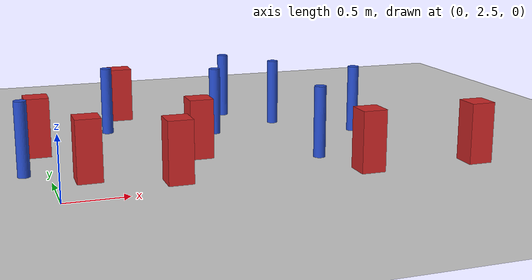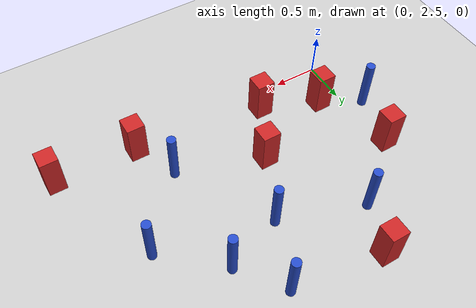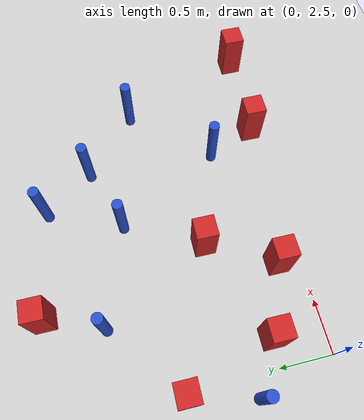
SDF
<sdf version="1.6">
 <world name="default">
  <model name="ground_plane">
   <static>1</static>
   <link name="link">
    <collision name="collision">
     <geometry><plane><normal>0 0 1</normal><size>100 100</size></plane></geometry>
     <surface><friction><ode><mu>100</mu><mu2>50</mu2></ode></friction></surface>
    </collision>
    <visual name="visual">
     <cast_shadows>0</cast_shadows>
     <geometry><plane><normal>0 0 1</normal><size>100 100</size></plane></geometry>
     <material>
      <ambient>1.0 1.0 1.0 1.0</ambient>
      <diffuse>0.8 0.8 0.8 1.0</diffuse>
      <specular>0.01 0.01 0.01 1.000000</specular>
     </material>
    </visual>
   </link>
  </model>
  <model name="pole_obstacle12">
   <static>true</static>
   <pose>0.657242234595 4.40116900106 -9.47619616065e-06 5.49618799737e-07 2.36310414065e-07 -1.55090534796e-07</pose>
   <link name="link">
    <pose>0 0 0.3 0 -0 0</pose>
    <inertial>
     <mass>1</mass>
     <inertia><ixx>0.145833</ixx><ixy>0</ixy><ixz>0</ixz><iyy>0.145833</iyy><iyz>0</iyz><izz>0.125</izz></inertia>
    </inertial>
    <collision name="collision">
     <geometry><cylinder><radius>0.05</radius><length>.6</length></cylinder></geometry>
    </collision>
    <visual name="visual">
     <geometry><cylinder><radius>0.05</radius><length>.6</length></cylinder></geometry>
     <material>
      <script><name>Gazebo/Blue</name><uri>file://media/materials/scripts/gazebo.material</uri></script>
     </material>
    </visual>
   </link>
  </model>
  <model name="pole_obstacle21">
   <static>true</static>
   <pose>1.88008731357 4.78758069899 -9.47619616065e-06 5.49618799737e-07 2.36310414061e-07 -1.550905348e-07</pose>
   <link name="link">
    <pose>0 0 0.3 0 -0 0</pose>
    <inertial>
     <mass>1</mass>
     <inertia><ixx>0.145833</ixx><ixy>0</ixy><ixz>0</ixz><iyy>0.145833</iyy><iyz>0</iyz><izz>0.125</izz></inertia>
    </inertial>
    <collision name="collision">
     <geometry><cylinder><radius>0.05</radius><length>.6</length></cylinder></geometry>
    </collision>
    <visual name="visual">
     <geometry><cylinder><radius>0.05</radius><length>.6</length></cylinder></geometry>
     <material>
      <script><name>Gazebo/Blue</name><uri>file://media/materials/scripts/gazebo.material</uri></script>
     </material>
    </visual>
   </link>
  </model>
  <model name="pole_obstacle22">
   <static>true</static>
   <pose>2.83495884341 3.78660274356 -9.47619616065e-06 5.49618799737e-07 2.36310414051e-07 -1.55090534807e-07</pose>
   <link name="link">
    <pose>0 0 0.3 0 -0 0</pose>
    <inertial>
     <mass>1</mass>
     <inertia><ixx>0.145833</ixx><ixy>0</ixy><ixz>0</ixz><iyy>0.145833</iyy><iyz>0</iyz><izz>0.125</izz></inertia>
    </inertial>
    <collision name="collision">
     <geometry><cylinder><radius>0.05</radius><length>.6</length></cylinder></geometry>
    </collision>
    <visual name="visual">
     <geometry><cylinder><radius>0.05</radius><length>.6</length></cylinder></geometry>
     <material>
      <script><name>Gazebo/Blue</name><uri>file://media/materials/scripts/gazebo.material</uri></script>
     </material>
    </visual>
   </link>
  </model>
  <model name="square_post_obstacle69">
   <static>true</static>
   <pose>0.268329556664 2.98880078036 -6.11067671241e-07 -5.50515727128e-06 -8.79689657224e-07 2.37013304536e-05</pose>
   <link name="link">
    <pose>0 0 0.25 0 -0 0</pose>
    <inertial>
     <mass>100</mass>
     <inertia>
      <ixx>0.166667</ixx>
      <ixy>0</ixy>
      <ixz>0</ixz>
      <iyy>0.166667</iyy>
      <iyz>0</iyz>
      <izz>0.166667</izz>
     </inertia>
    </inertial>
    <collision name="collision"><geometry><box><size>.2 .2 .5</size></box></geometry></collision>
    <visual name="visual">
     <geometry><box><size>.2 .2 .5</size></box></geometry>
     <material>
      <script><name>Gazebo/Red</name><uri>file://media/materials/scripts/gazebo.material</uri></script>
     </material>
    </visual>
   </link>
  </model>
  <model name="pole_obstacle77">
   <static>true</static>
   <pose>1.5898215497 4.08103817789 -9.47619616065e-06 5.49618799737e-07 2.36310414061e-07 -1.550905348e-07</pose>
   <link name="link">
    <pose>0 0 0.3 0 -0 0</pose>
    <inertial>
     <mass>1</mass>
     <inertia><ixx>0.145833</ixx><ixy>0</ixy><ixz>0</ixz><iyy>0.145833</iyy><iyz>0</iyz><izz>0.125</izz></inertia>
    </inertial>
    <collision name="collision">
     <geometry><cylinder><radius>0.05</radius><length>.6</length></cylinder></geometry>
    </collision>
    <visual name="visual">
     <geometry><cylinder><radius>0.05</radius><length>.6</length></cylinder></geometry>
     <material>
      <script><name>Gazebo/Blue</name><uri>file://media/materials/scripts/gazebo.material</uri></script>
     </material>
    </visual>
   </link>
  </model>
  <model name="pole_obstacle95">
   <static>true</static>
   <pose>2.18825418097 3.03562841617 -9.47619616065e-06 5.49618799737e-07 2.36310414051e-07 -1.55090534807e-07</pose>
   <link name="link">
    <pose>0 0 0.3 0 -0 0</pose>
    <inertial>
     <mass>1</mass>
     <inertia><ixx>0.145833</ixx><ixy>0</ixy><ixz>0</ixz><iyy>0.145833</iyy><iyz>0</iyz><izz>0.125</izz></inertia>
    </inertial>
    <collision name="collision">
     <geometry><cylinder><radius>0.05</radius><length>.6</length></cylinder></geometry>
    </collision>
    <visual name="visual">
     <geometry><cylinder><radius>0.05</radius><length>.6</length></cylinder></geometry>
     <material>
      <script><name>Gazebo/Blue</name><uri>file://media/materials/scripts/gazebo.material</uri></script>
     </material>
    </visual>
   </link>
  </model>
  <model name="square_post_obstacle84">
   <static>true</static>
   <pose>3.34300244757 2.51594749155 -6.11067671241e-07 -5.50515727128e-06 -8.79689657224e-07 2.37013304536e-05</pose>
   <link name="link">
    <pose>0 0 0.25 0 -0 0</pose>
    <inertial>
     <mass>100</mass>
     <inertia>
      <ixx>0.166667</ixx>
      <ixy>0</ixy>
      <ixz>0</ixz>
      <iyy>0.166667</iyy>
      <iyz>0</iyz>
      <izz>0.166667</izz>
     </inertia>
    </inertial>
    <collision name="collision"><geometry><box><size>.2 .2 .5</size></box></geometry></collision>
    <visual name="visual">
     <geometry><box><size>.2 .2 .5</size></box></geometry>
     <material>
      <script><name>Gazebo/Red</name><uri>file://media/materials/scripts/gazebo.material</uri></script>
     </material>
    </visual>
   </link>
  </model>
  <model name="square_post_obstacle94">
   <static>true</static>
   <pose>-0.0245551724282 3.83456139236 -6.11067671241e-07 -5.50515727128e-06 -8.79689657224e-07 2.37013304536e-05</pose>
   <link name="link">
    <pose>0 0 0.25 0 -0 0</pose>
    <inertial>
     <mass>100</mass>
     <inertia>
      <ixx>0.166667</ixx>
      <ixy>0</ixy>
      <ixz>0</ixz>
      <iyy>0.166667</iyy>
      <iyz>0</iyz>
      <izz>0.166667</izz>
     </inertia>
    </inertial>
    <collision name="collision"><geometry><box><size>.2 .2 .5</size></box></geometry></collision>
    <visual name="visual">
     <geometry><box><size>.2 .2 .5</size></box></geometry>
     <material>
      <script><name>Gazebo/Red</name><uri>file://media/materials/scripts/gazebo.material</uri></script>
     </material>
    </visual>
   </link>
  </model>
  <model name="pole_obstacle113">
   <static>true</static>
   <pose>2.23481605324 4.3113399485 -9.47619616065e-06 5.49618799738e-07 2.3631041406e-07 -1.55090534801e-07</pose>
   <link name="link">
    <pose>0 0 0.3 0 -0 0</pose>
    <inertial>
     <mass>1</mass>
     <inertia><ixx>0.145833</ixx><ixy>0</ixy><ixz>0</ixz><iyy>0.145833</iyy><iyz>0</iyz><izz>0.125</izz></inertia>
    </inertial>
    <collision name="collision">
     <geometry><cylinder><radius>0.05</radius><length>.6</length></cylinder></geometry>
    </collision>
    <visual name="visual">
     <geometry><cylinder><radius>0.05</radius><length>.6</length></cylinder></geometry>
     <material>
      <script><name>Gazebo/Blue</name><uri>file://media/materials/scripts/gazebo.material</uri></script>
     </material>
    </visual>
   </link>
  </model>
  <model name="pole_obstacle150">
   <static>true</static>
   <pose>-0.189831140969 3.2367947029 -9.47619616065e-06 5.49618799738e-07 2.36310414068e-07 -1.55090534794e-07</pose>
   <link name="link">
    <pose>0 0 0.3 0 -0 0</pose>
    <inertial>
     <mass>1</mass>
     <inertia><ixx>0.145833</ixx><ixy>0</ixy><ixz>0</ixz><iyy>0.145833</iyy><iyz>0</iyz><izz>0.125</izz></inertia>
    </inertial>
    <collision name="collision">
     <geometry><cylinder><radius>0.05</radius><length>.6</length></cylinder></geometry>
    </collision>
    <visual name="visual">
     <geometry><cylinder><radius>0.05</radius><length>.6</length></cylinder></geometry>
     <material>
      <script><name>Gazebo/Blue</name><uri>file://media/materials/scripts/gazebo.material</uri></script>
     </material>
    </visual>
   </link>
  </model>
  <model name="square_post_obstacle143">
   <static>true</static>
   <pose>1.24422720786 3.36394928118 -6.11067671241e-07 -5.50515727128e-06 -8.79689657224e-07 2.37013304536e-05</pose>
   <link name="link">
    <pose>0 0 0.25 0 -0 0</pose>
    <inertial>
     <mass>100</mass>
     <inertia>
      <ixx>0.166667</ixx>
      <ixy>0</ixy>
      <ixz>0</ixz>
      <iyy>0.166667</iyy>
      <iyz>0</iyz>
      <izz>0.166667</izz>
     </inertia>
    </inertial>
    <collision name="collision"><geometry><box><size>.2 .2 .5</size></box></geometry></collision>
    <visual name="visual">
     <geometry><box><size>.2 .2 .5</size></box></geometry>
     <material>
      <script><name>Gazebo/Red</name><uri>file://media/materials/scripts/gazebo.material</uri></script>
     </material>
    </visual>
   </link>
  </model>
  <model name="square_post_obstacle185">
   <static>true</static>
   <pose>2.4074792309 2.556051401 -6.11067671241e-07 -5.50515727128e-06 -8.79689657224e-07 2.37013304536e-05</pose>
   <link name="link">
    <pose>0 0 0.25 0 -0 0</pose>
    <inertial>
     <mass>100</mass>
     <inertia>
      <ixx>0.166667</ixx>
      <ixy>0</ixy>
      <ixz>0</ixz>
      <iyy>0.166667</iyy>
      <iyz>0</iyz>
      <izz>0.166667</izz>
     </inertia>
    </inertial>
    <collision name="collision"><geometry><box><size>.2 .2 .5</size></box></geometry></collision>
    <visual name="visual">
     <geometry><box><size>.2 .2 .5</size></box></geometry>
     <material>
      <script><name>Gazebo/Red</name><uri>file://media/materials/scripts/gazebo.material</uri></script>
     </material>
    </visual>
   </link>
  </model>
  <model name="square_post_obstacle197">
   <static>true</static>
   <pose>0.871903877292 4.93263803057 -6.11067671241e-07 -5.50515727128e-06 -8.79689657224e-07 2.37013304536e-05</pose>
   <link name="link">
    <pose>0 0 0.25 0 -0 0</pose>
    <inertial>
     <mass>100</mass>
     <inertia>
      <ixx>0.166667</ixx>
      <ixy>0</ixy>
      <ixz>0</ixz>
      <iyy>0.166667</iyy>
      <iyz>0</iyz>
      <izz>0.166667</izz>
     </inertia>
    </inertial>
    <collision name="collision"><geometry><box><size>.2 .2 .5</size></box></geometry></collision>
    <visual name="visual">
     <geometry><box><size>.2 .2 .5</size></box></geometry>
     <material>
      <script><name>Gazebo/Red</name><uri>file://media/materials/scripts/gazebo.material</uri></script>
     </material>
    </visual>
   </link>
  </model>
  <model name="square_post_obstacle246">
   <static>true</static>
   <pose>0.907884950203 2.73140997688 -6.11067671241e-07 -5.50515727128e-06 -8.79689657224e-07 2.37013304536e-05</pose>
   <link name="link">
    <pose>0 0 0.25 0 -0 0</pose>
    <inertial>
     <mass>100</mass>
     <inertia>
      <ixx>0.166667</ixx>
      <ixy>0</ixy>
      <ixz>0</ixz>
      <iyy>0.166667</iyy>
      <iyz>0</iyz>
      <izz>0.166667</izz>
     </inertia>
    </inertial>
    <collision name="collision"><geometry><box><size>.2 .2 .5</size></box></geometry></collision>
    <visual name="visual">
     <geometry><box><size>.2 .2 .5</size></box></geometry>
     <material>
      <script><name>Gazebo/Red</name><uri>file://media/materials/scripts/gazebo.material</uri></script>
     </material>
    </visual>
   </link>
  </model>
 </world>
</sdf>
